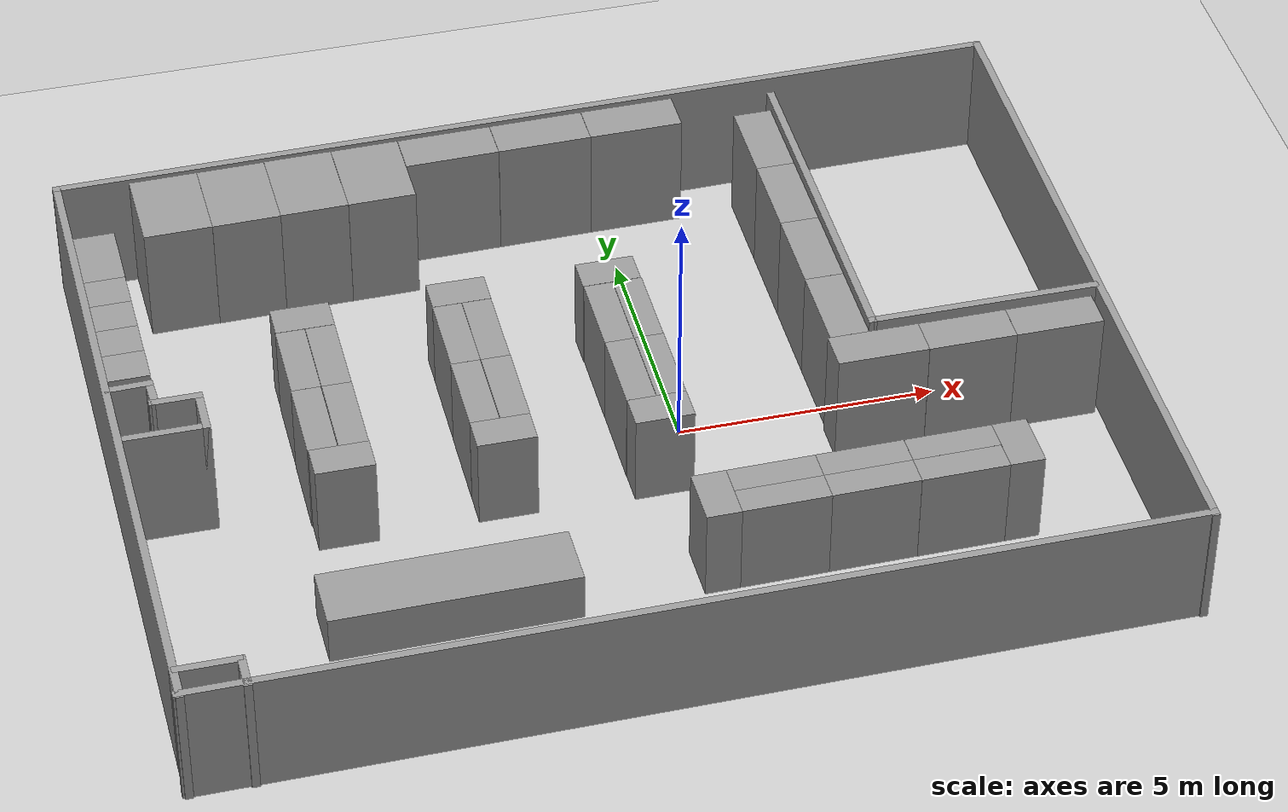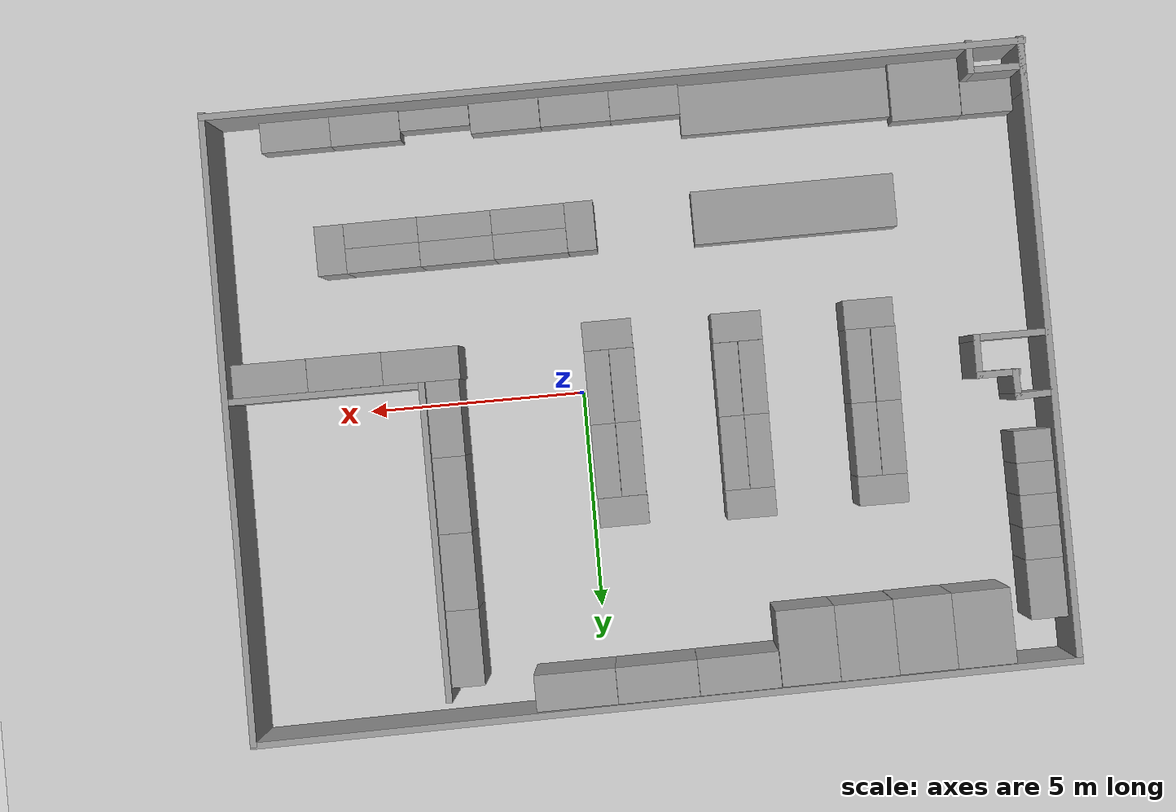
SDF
<sdf version="1.6">
 <world name="default">
  <light name="sun" type="directional">
   <pose>0 0 10 0 -0 0</pose>
   <diffuse>0.8 0.8 0.8 1</diffuse>
   <specular>0.2 0.2 0.2 1</specular>
   <attenuation>
    <range>1000</range>
    <constant>0.9</constant>
    <linear>0.01</linear>
    <quadratic>0.001</quadratic>
   </attenuation>
   <direction>-0.5 0.1 -0.9</direction>
  </light>
  <model name="ground_plane">
   <static>1</static>
   <link name="link">
    <collision name="collision">
     <geometry><plane><normal>0 0 1</normal><size>100 100</size></plane></geometry>
     <surface>
      <contact><collide_bitmask>65535</collide_bitmask></contact>
      <friction><ode><mu>100</mu><mu2>50</mu2></ode></friction>
     </surface>
    </collision>
    <visual name="visual">
     <cast_shadows>0</cast_shadows>
     <geometry><plane><normal>0 0 1</normal><size>100 100</size></plane></geometry>
     <material>
      <script><uri>file://media/materials/scripts/gazebo.material</uri><name>Gazebo/Grey</name></script>
     </material>
    </visual>
   </link>
  </model>
  <gravity>0 0 -9.8</gravity>
  <magnetic_field>6e-06 2.3e-05 -4.2e-05</magnetic_field>
  <atmosphere type="adiabatic"/>
  <physics name="default_physics" default="0" type="ode">
   <max_step_size>0.001</max_step_size>
   <real_time_factor>1</real_time_factor>
   <real_time_update_rate>1000</real_time_update_rate>
  </physics>
  <scene><ambient>0.4 0.4 0.4 1</ambient><background>0.7 0.7 0.7 1</background><shadows>1</shadows></scene>
  <audio><device>default</device></audio>
  <spherical_coordinates>
   <surface_model>EARTH_WGS84</surface_model>
   <latitude_deg>0</latitude_deg>
   <longitude_deg>0</longitude_deg>
   <elevation>0</elevation>
   <heading_deg>0</heading_deg>
  </spherical_coordinates>
  <model name="unit_box_2_clone">
   <pose>-5.2472 -6.35039 0.336143 -3e-06 -0 -3.13776</pose>
   <link name="link">
    <inertial>
     <mass>1</mass>
     <inertia>
      <ixx>0.166667</ixx>
      <ixy>0</ixy>
      <ixz>0</ixz>
      <iyy>0.166667</iyy>
      <iyz>0</iyz>
      <izz>0.166667</izz>
     </inertia>
    </inertial>
    <collision name="collision"><geometry><box><size>4.8667 1.16268 0.672289</size></box></geometry></collision>
    <visual name="visual">
     <geometry><box><size>4.8667 1.16268 0.672289</size></box></geometry>
     <material>
      <script><name>Gazebo/Grey</name><uri>file://media/materials/scripts/gazebo.material</uri></script>
     </material>
    </visual>
   </link>
  </model>
  <model name="environment3">
   <pose>-1.31274 0.09418 0 0 -0 0</pose>
   <link name="Wall_217">
    <collision name="Wall_217_Collision">
     <geometry><box><size>1.25 0.15 2.5</size></box></geometry>
     <pose>0 0 1.25 0 -0 0</pose>
    </collision>
    <visual name="Wall_217_Visual">
     <pose>0 0 1.25 0 -0 0</pose>
     <geometry><box><size>1.25 0.15 2.5</size></box></geometry>
     <material>
      <script><uri>file://media/materials/scripts/gazebo.material</uri><name>Gazebo/Grey</name></script>
      <ambient>1 1 1 1</ambient>
     </material>
     <meta><layer>0</layer></meta>
    </visual>
    <pose>-9.24536 -6.58909 0 0 -0 -1.5708</pose>
   </link>
   <link name="Wall_218">
    <collision name="Wall_218_Collision">
     <geometry><box><size>18.7151 0.15 2.5</size></box></geometry>
     <pose>0 0 1.25 0 -0 0</pose>
    </collision>
    <visual name="Wall_218_Visual">
     <pose>0 0 1.25 0 -0 0</pose>
     <geometry><box><size>18.7151 0.15 2.5</size></box></geometry>
     <material>
      <script><uri>file://media/materials/scripts/gazebo.material</uri><name>Gazebo/Grey</name></script>
      <ambient>1 1 1 1</ambient>
     </material>
     <meta><layer>0</layer></meta>
    </visual>
    <pose>0.001874 -7.08633 0 0 -0 0.005685</pose>
   </link>
   <link name="Wall_219">
    <collision name="Wall_219_Collision">
     <geometry><box><size>14.352 0.15 2.5</size></box></geometry>
     <pose>0 0 1.25 0 -0 0</pose>
    </collision>
    <visual name="Wall_219_Visual">
     <pose>0 0 1.25 0 -0 0</pose>
     <geometry><box><size>14.352 0.15 2.5</size></box></geometry>
     <material>
      <script><uri>file://media/materials/scripts/gazebo.material</uri><name>Gazebo/Grey</name></script>
      <ambient>1 1 1 1</ambient>
     </material>
     <meta><layer>0</layer></meta>
    </visual>
    <pose>9.31946 0.032158 0 0 -0 1.56584</pose>
   </link>
   <link name="Wall_220">
    <collision name="Wall_220_Collision">
     <geometry><box><size>18.8609 0.15 2.5</size></box></geometry>
     <pose>0 0 1.25 0 -0 0</pose>
    </collision>
    <visual name="Wall_220_Visual">
     <pose>0 0 1.25 0 -0 0</pose>
     <geometry><box><size>18.8609 0.15 2.5</size></box></geometry>
     <material>
      <script><uri>file://media/materials/scripts/gazebo.material</uri><name>Gazebo/Grey</name></script>
      <ambient>1 1 1 1</ambient>
     </material>
     <meta><layer>0</layer></meta>
    </visual>
    <pose>-0 7.02752 0 0 -0 -3.12655</pose>
   </link>
   <link name="Wall_223">
    <collision name="Wall_223_Collision">
     <geometry><box><size>14.206 0.15 2.5</size></box></geometry>
     <pose>0 0 1.25 0 -0 0</pose>
    </collision>
    <visual name="Wall_223_Visual">
     <pose>0 0 1.25 0 -0 0</pose>
     <geometry><box><size>14.206 0.15 2.5</size></box></geometry>
     <material>
      <script><uri>file://media/materials/scripts/gazebo.material</uri><name>Gazebo/Grey</name></script>
      <ambient>1 1 1 1</ambient>
     </material>
     <meta><layer>0</layer></meta>
    </visual>
    <pose>-9.29723 -0.140968 0 0 -0 -1.56263</pose>
   </link>
   <link name="Wall_225">
    <collision name="Wall_225_Collision">
     <geometry><box><size>0.90254 0.15 2.5</size></box></geometry>
     <pose>0 0 1.25 0 -0 0</pose>
    </collision>
    <visual name="Wall_225_Visual">
     <pose>0 0 1.25 0 -0 0</pose>
     <geometry><box><size>0.90254 0.15 2.5</size></box></geometry>
     <material>
      <script><uri>file://media/materials/scripts/gazebo.material</uri><name>Gazebo/Grey</name></script>
      <ambient>1 1 1 1</ambient>
     </material>
     <meta><layer>0</layer></meta>
    </visual>
    <pose>-8.87485 0.82636 0 0 -0 0.026731</pose>
   </link>
   <link name="Wall_226">
    <collision name="Wall_226_Collision">
     <geometry><box><size>0.678566 0.15 2.5</size></box></geometry>
     <pose>0 0 1.25 0 -0 0</pose>
    </collision>
    <visual name="Wall_226_Visual">
     <pose>0 0 1.25 0 -0 0</pose>
     <geometry><box><size>0.678566 0.15 2.5</size></box></geometry>
     <material>
      <script><uri>file://media/materials/scripts/gazebo.material</uri><name>Gazebo/Grey</name></script>
      <ambient>1 1 1 1</ambient>
     </material>
     <meta><layer>0</layer></meta>
    </visual>
    <pose>-8.48866 0.552211 0 0 -0 -1.53273</pose>
   </link>
   <link name="Wall_227">
    <collision name="Wall_227_Collision">
     <geometry><box><size>1 0.15 2.5</size></box></geometry>
     <pose>0 0 1.25 0 -0 0</pose>
    </collision>
    <visual name="Wall_227_Visual">
     <pose>0 0 1.25 0 -0 0</pose>
     <geometry><box><size>1 0.15 2.5</size></box></geometry>
     <material>
      <script><uri>file://media/materials/scripts/gazebo.material</uri><name>Gazebo/Grey</name></script>
      <ambient>1 1 1 1</ambient>
     </material>
     <meta><layer>0</layer></meta>
    </visual>
    <pose>-8.09383 0.28812 0 0 -0 0</pose>
   </link>
   <link name="Wall_228">
    <collision name="Wall_228_Collision">
     <geometry><box><size>1 0.15 2.5</size></box></geometry>
     <pose>0 0 1.25 0 -0 0</pose>
    </collision>
    <visual name="Wall_228_Visual">
     <pose>0 0 1.25 0 -0 0</pose>
     <geometry><box><size>1 0.15 2.5</size></box></geometry>
     <material>
      <script><uri>file://media/materials/scripts/gazebo.material</uri><name>Gazebo/Grey</name></script>
      <ambient>1 1 1 1</ambient>
     </material>
     <meta><layer>0</layer></meta>
    </visual>
    <pose>-7.66883 -0.13688 0 0 -0 -1.5708</pose>
   </link>
   <link name="Wall_229">
    <collision name="Wall_229_Collision">
     <geometry><box><size>1.75 0.15 2.5</size></box></geometry>
     <pose>0 0 1.25 0 -0 0</pose>
    </collision>
    <visual name="Wall_229_Visual">
     <pose>0 0 1.25 0 -0 0</pose>
     <geometry><box><size>1.75 0.15 2.5</size></box></geometry>
     <material>
      <script><uri>file://media/materials/scripts/gazebo.material</uri><name>Gazebo/Grey</name></script>
      <ambient>1 1 1 1</ambient>
     </material>
     <meta><layer>0</layer></meta>
    </visual>
    <pose>-8.46883 -0.56188 0 0 -0 3.14159</pose>
   </link>
   <link name="Wall_235">
    <collision name="Wall_235_Collision">
     <geometry><box><size>0.75 0.15 2.5</size></box></geometry>
     <pose>0 0 1.25 0 -0 0</pose>
    </collision>
    <visual name="Wall_235_Visual">
     <pose>0 0 1.25 0 -0 0</pose>
     <geometry><box><size>0.75 0.15 2.5</size></box></geometry>
     <material>
      <script><uri>file://media/materials/scripts/gazebo.material</uri><name>Gazebo/Grey</name></script>
      <ambient>1 1 1 1</ambient>
     </material>
     <meta><layer>0</layer></meta>
    </visual>
    <pose>-8.07048 -6.86922 0 0 -0 1.5708</pose>
   </link>
   <link name="Wall_236">
    <collision name="Wall_236_Collision">
     <geometry><box><size>1.25 0.15 2.5</size></box></geometry>
     <pose>0 0 1.25 0 -0 0</pose>
    </collision>
    <visual name="Wall_236_Visual">
     <pose>0 0 1.25 0 -0 0</pose>
     <geometry><box><size>1.25 0.15 2.5</size></box></geometry>
     <material>
      <script><uri>file://media/materials/scripts/gazebo.material</uri><name>Gazebo/Grey</name></script>
      <ambient>1 1 1 1</ambient>
     </material>
     <meta><layer>0</layer></meta>
    </visual>
    <pose>-8.66071 -6.56922 0 0 -0 3.14159</pose>
   </link>
   <link name="Wall_238">
    <collision name="Wall_238_Collision">
     <geometry><box><size>7.25 0.15 2.5</size></box></geometry>
     <pose>0 0 1.25 0 -0 0</pose>
    </collision>
    <visual name="Wall_238_Visual">
     <pose>0 0 1.25 0 -0 0</pose>
     <geometry><box><size>7.25 0.15 2.5</size></box></geometry>
     <material>
      <script><uri>file://media/materials/scripts/gazebo.material</uri><name>Gazebo/Grey</name></script>
      <ambient>1 1 1 1</ambient>
     </material>
     <meta><layer>0</layer></meta>
    </visual>
    <pose>4.87464 2.96657 0 0 -0 -1.5708</pose>
   </link>
   <link name="Wall_239">
    <collision name="Wall_239_Collision">
     <geometry><box><size>4.5 0.15 2.5</size></box></geometry>
     <pose>0 0 1.25 0 -0 0</pose>
    </collision>
    <visual name="Wall_239_Visual">
     <pose>0 0 1.25 0 -0 0</pose>
     <geometry><box><size>4.5 0.15 2.5</size></box></geometry>
     <material>
      <script><uri>file://media/materials/scripts/gazebo.material</uri><name>Gazebo/Grey</name></script>
      <ambient>1 1 1 1</ambient>
     </material>
     <meta><layer>0</layer></meta>
    </visual>
    <pose>7.04964 -0.58343 0 0 -0 0</pose>
   </link>
   <static>1</static>
  </model>
  <model name="unit_box_clone">
   <pose>-7.26491 6.08769 1.2101 0 -1e-06 1.58527</pose>
   <link name="link">
    <inertial>
     <mass>1</mass>
     <inertia>
      <ixx>0.166667</ixx>
      <ixy>0</ixy>
      <ixz>0</ixz>
      <iyy>0.166667</iyy>
      <iyz>0</iyz>
      <izz>0.166667</izz>
     </inertia>
    </inertial>
    <collision name="collision"><geometry><box><size>1.72242 1.3297 2.4202</size></box></geometry></collision>
    <visual name="visual">
     <geometry><box><size>1.72242 1.3297 2.4202</size></box></geometry>
     <material>
      <script><name>Gazebo/Grey</name><uri>file://media/materials/scripts/gazebo.material</uri></script>
     </material>
    </visual>
   </link>
  </model>
  <model name="unit_box_clone_0">
   <pose>-5.93518 6.11458 1.2101 0 -1e-06 1.58495</pose>
   <link name="link">
    <inertial>
     <mass>1</mass>
     <inertia>
      <ixx>0.166667</ixx>
      <ixy>0</ixy>
      <ixz>0</ixz>
      <iyy>0.166667</iyy>
      <iyz>0</iyz>
      <izz>0.166667</izz>
     </inertia>
    </inertial>
    <collision name="collision"><geometry><box><size>1.72242 1.3297 2.4202</size></box></geometry></collision>
    <visual name="visual">
     <geometry><box><size>1.72242 1.3297 2.4202</size></box></geometry>
     <material>
      <script><name>Gazebo/Grey</name><uri>file://media/materials/scripts/gazebo.material</uri></script>
     </material>
    </visual>
   </link>
  </model>
  <model name="unit_box_clone_1">
   <pose>-4.6045 6.12898 1.2101 0 -1e-06 1.58427</pose>
   <link name="link">
    <inertial>
     <mass>1</mass>
     <inertia>
      <ixx>0.166667</ixx>
      <ixy>0</ixy>
      <ixz>0</ixz>
      <iyy>0.166667</iyy>
      <iyz>0</iyz>
      <izz>0.166667</izz>
     </inertia>
    </inertial>
    <collision name="collision"><geometry><box><size>1.72242 1.3297 2.4202</size></box></geometry></collision>
    <visual name="visual">
     <geometry><box><size>1.72242 1.3297 2.4202</size></box></geometry>
     <material>
      <script><name>Gazebo/Grey</name><uri>file://media/materials/scripts/gazebo.material</uri></script>
     </material>
    </visual>
   </link>
  </model>
  <model name="unit_box_0_clone_0_clone">
   <pose>-1.15521 6.63331 1.20397 0 4e-06 0.013516</pose>
   <link name="link">
    <inertial>
     <mass>1</mass>
     <inertia>
      <ixx>0.166667</ixx>
      <ixy>0</ixy>
      <ixz>0</ixz>
      <iyy>0.166667</iyy>
      <iyz>0</iyz>
      <izz>0.166667</izz>
     </inertia>
    </inertial>
    <collision name="collision"><geometry><box><size>1.85287 0.828529 2.40795</size></box></geometry></collision>
    <visual name="visual">
     <geometry><box><size>1.85287 0.828529 2.40795</size></box></geometry>
     <material>
      <script><name>Gazebo/Grey</name><uri>file://media/materials/scripts/gazebo.material</uri></script>
     </material>
    </visual>
   </link>
  </model>
  <model name="unit_box_0_clone_0_clone_0">
   <pose>0.700059 6.65273 1.20397 0 4e-06 0.007467</pose>
   <link name="link">
    <inertial>
     <mass>1</mass>
     <inertia>
      <ixx>0.166667</ixx>
      <ixy>0</ixy>
      <ixz>0</ixz>
      <iyy>0.166667</iyy>
      <iyz>0</iyz>
      <izz>0.166667</izz>
     </inertia>
    </inertial>
    <collision name="collision"><geometry><box><size>1.85287 0.828529 2.40795</size></box></geometry></collision>
    <visual name="visual">
     <geometry><box><size>1.85287 0.828529 2.40795</size></box></geometry>
     <material>
      <script><name>Gazebo/Grey</name><uri>file://media/materials/scripts/gazebo.material</uri></script>
     </material>
    </visual>
   </link>
  </model>
  <model name="unit_box_1_clone_clone_clone_clone_0_clone">
   <pose>3.10878 0.300895 1.14541 -5e-06 -0 -0.000475</pose>
   <link name="link">
    <inertial>
     <mass>1</mass>
     <inertia>
      <ixx>0.166667</ixx>
      <ixy>0</ixy>
      <ixz>0</ixz>
      <iyy>0.166667</iyy>
      <iyz>0</iyz>
      <izz>0.166667</izz>
     </inertia>
    </inertial>
    <collision name="collision"><geometry><box><size>0.754186 1.73654 2.29083</size></box></geometry></collision>
    <visual name="visual">
     <geometry><box><size>0.754186 1.73654 2.29083</size></box></geometry>
     <material>
      <script><name>Gazebo/Grey</name><uri>file://media/materials/scripts/gazebo.material</uri></script>
     </material>
    </visual>
   </link>
  </model>
  <model name="unit_box_1_clone_clone_clone_clone_0_clone_clone">
   <pose>3.10933 2.03759 1.14541 5e-06 -0 -0.000132</pose>
   <link name="link">
    <inertial>
     <mass>1</mass>
     <inertia>
      <ixx>0.166667</ixx>
      <ixy>0</ixy>
      <ixz>0</ixz>
      <iyy>0.166667</iyy>
      <iyz>0</iyz>
      <izz>0.166667</izz>
     </inertia>
    </inertial>
    <collision name="collision"><geometry><box><size>0.754186 1.73654 2.29083</size></box></geometry></collision>
    <visual name="visual">
     <geometry><box><size>0.754186 1.73654 2.29083</size></box></geometry>
     <material>
      <script><name>Gazebo/Grey</name><uri>file://media/materials/scripts/gazebo.material</uri></script>
     </material>
    </visual>
   </link>
  </model>
  <model name="unit_box_1_clone_clone_clone_clone_0_clone_clone_0">
   <pose>3.10954 3.77433 1.14541 5e-06 -0 0.00029</pose>
   <link name="link">
    <inertial>
     <mass>1</mass>
     <inertia>
      <ixx>0.166667</ixx>
      <ixy>0</ixy>
      <ixz>0</ixz>
      <iyy>0.166667</iyy>
      <iyz>0</iyz>
      <izz>0.166667</izz>
     </inertia>
    </inertial>
    <collision name="collision"><geometry><box><size>0.754186 1.73654 2.29083</size></box></geometry></collision>
    <visual name="visual">
     <geometry><box><size>0.754186 1.73654 2.29083</size></box></geometry>
     <material>
      <script><name>Gazebo/Grey</name><uri>file://media/materials/scripts/gazebo.material</uri></script>
     </material>
    </visual>
   </link>
  </model>
  <model name="unit_box_1_clone_clone_clone_clone_0_clone_clone_1">
   <pose>3.10954 5.51109 1.14541 -5e-06 -0 0.000134</pose>
   <link name="link">
    <inertial>
     <mass>1</mass>
     <inertia>
      <ixx>0.166667</ixx>
      <ixy>0</ixy>
      <ixz>0</ixz>
      <iyy>0.166667</iyy>
      <iyz>0</iyz>
      <izz>0.166667</izz>
     </inertia>
    </inertial>
    <collision name="collision"><geometry><box><size>0.754186 1.73654 2.29083</size></box></geometry></collision>
    <visual name="visual">
     <geometry><box><size>0.754186 1.73654 2.29083</size></box></geometry>
     <material>
      <script><name>Gazebo/Grey</name><uri>file://media/materials/scripts/gazebo.material</uri></script>
     </material>
    </visual>
   </link>
  </model>
  <model name="unit_box_4_clone">
   <pose>-10.1491 5.33947 0.993337 5e-06 0 0.007952</pose>
   <link name="link">
    <inertial>
     <mass>1</mass>
     <inertia>
      <ixx>0.166667</ixx>
      <ixy>0</ixy>
      <ixz>0</ixz>
      <iyy>0.166667</iyy>
      <iyz>0</iyz>
      <izz>0.166667</izz>
     </inertia>
    </inertial>
    <collision name="collision"><geometry><box><size>0.849724 1.3605 1.98668</size></box></geometry></collision>
    <visual name="visual">
     <geometry><box><size>0.849724 1.3605 1.98668</size></box></geometry>
     <material>
      <script><name>Gazebo/Grey</name><uri>file://media/materials/scripts/gazebo.material</uri></script>
     </material>
    </visual>
   </link>
  </model>
  <model name="unit_box_4_clone_clone">
   <pose>-10.1455 4.29171 0.993339 -1e-06 -2e-06 0.00795</pose>
   <link name="link">
    <inertial>
     <mass>1</mass>
     <inertia>
      <ixx>0.166667</ixx>
      <ixy>0</ixy>
      <ixz>0</ixz>
      <iyy>0.166667</iyy>
      <iyz>0</iyz>
      <izz>0.166667</izz>
     </inertia>
    </inertial>
    <collision name="collision"><geometry><box><size>0.849724 0.735026 1.98668</size></box></geometry></collision>
    <visual name="visual">
     <geometry><box><size>0.849724 0.735026 1.98668</size></box></geometry>
     <material>
      <script><name>Gazebo/Grey</name><uri>file://media/materials/scripts/gazebo.material</uri></script>
     </material>
    </visual>
   </link>
  </model>
  <model name="unit_box_4_clone_clone_0">
   <pose>-10.1391 3.55671 0.993335 -0 -4e-06 0.007949</pose>
   <link name="link">
    <inertial>
     <mass>1</mass>
     <inertia>
      <ixx>0.166667</ixx>
      <ixy>0</ixy>
      <ixz>0</ixz>
      <iyy>0.166667</iyy>
      <iyz>0</iyz>
      <izz>0.166667</izz>
     </inertia>
    </inertial>
    <collision name="collision"><geometry><box><size>0.849724 0.735026 1.98668</size></box></geometry></collision>
    <visual name="visual">
     <geometry><box><size>0.849724 0.735026 1.98668</size></box></geometry>
     <material>
      <script><name>Gazebo/Grey</name><uri>file://media/materials/scripts/gazebo.material</uri></script>
     </material>
    </visual>
   </link>
  </model>
  <model name="unit_box_4_clone_clone_1">
   <pose>-10.1329 2.82171 0.99334 0 -0 0.007945</pose>
   <link name="link">
    <inertial>
     <mass>1</mass>
     <inertia>
      <ixx>0.166667</ixx>
      <ixy>0</ixy>
      <ixz>0</ixz>
      <iyy>0.166667</iyy>
      <iyz>0</iyz>
      <izz>0.166667</izz>
     </inertia>
    </inertial>
    <collision name="collision"><geometry><box><size>0.849724 0.735026 1.98668</size></box></geometry></collision>
    <visual name="visual">
     <geometry><box><size>0.849724 0.735026 1.98668</size></box></geometry>
     <material>
      <script><name>Gazebo/Grey</name><uri>file://media/materials/scripts/gazebo.material</uri></script>
     </material>
    </visual>
   </link>
  </model>
  <model name="unit_box_4_clone_clone_2">
   <pose>-10.1233 2.08674 0.993338 -2e-06 2e-06 0.007944</pose>
   <link name="link">
    <inertial>
     <mass>1</mass>
     <inertia>
      <ixx>0.166667</ixx>
      <ixy>0</ixy>
      <ixz>0</ixz>
      <iyy>0.166667</iyy>
      <iyz>0</iyz>
      <izz>0.166667</izz>
     </inertia>
    </inertial>
    <collision name="collision"><geometry><box><size>0.849724 0.735026 1.98668</size></box></geometry></collision>
    <visual name="visual">
     <geometry><box><size>0.849724 0.735026 1.98668</size></box></geometry>
     <material>
      <script><name>Gazebo/Grey</name><uri>file://media/materials/scripts/gazebo.material</uri></script>
     </material>
    </visual>
   </link>
  </model>
  <model name="unit_box_2_clone_clone">
   <pose>-5.24083 -3.81499 0.5 -2e-06 -0 -3.13586</pose>
   <link name="link">
    <inertial>
     <mass>1</mass>
     <inertia>
      <ixx>0.166667</ixx>
      <ixy>0</ixy>
      <ixz>0</ixz>
      <iyy>0.166667</iyy>
      <iyz>0</iyz>
      <izz>0.166667</izz>
     </inertia>
    </inertial>
    <collision name="collision"><geometry><box><size>4.69338 1.22969 1</size></box></geometry></collision>
    <visual name="visual">
     <geometry><box><size>4.69338 1.22969 1</size></box></geometry>
     <material>
      <script><name>Gazebo/Grey</name><uri>file://media/materials/scripts/gazebo.material</uri></script>
     </material>
    </visual>
   </link>
  </model>
  <model name="unit_box_0_clone_0_clone_clone">
   <pose>-3.01091 6.6068 1.20397 0 -0 0.015006</pose>
   <link name="link">
    <inertial>
     <mass>1</mass>
     <inertia>
      <ixx>0.166667</ixx>
      <ixy>0</ixy>
      <ixz>0</ixz>
      <iyy>0.166667</iyy>
      <iyz>0</iyz>
      <izz>0.166667</izz>
     </inertia>
    </inertial>
    <collision name="collision"><geometry><box><size>1.85287 0.828529 2.40794</size></box></geometry></collision>
    <visual name="visual">
     <geometry><box><size>1.85287 0.828529 2.40794</size></box></geometry>
     <material>
      <script><name>Gazebo/Grey</name><uri>file://media/materials/scripts/gazebo.material</uri></script>
     </material>
    </visual>
   </link>
  </model>
  <model name="unit_box_clone_clone">
   <pose>-8.59455 6.07318 1.2101 0 -1e-06 1.58527</pose>
   <link name="link">
    <inertial>
     <mass>1</mass>
     <inertia>
      <ixx>0.166667</ixx>
      <ixy>0</ixy>
      <ixz>0</ixz>
      <iyy>0.166667</iyy>
      <iyz>0</iyz>
      <izz>0.166667</izz>
     </inertia>
    </inertial>
    <collision name="collision"><geometry><box><size>1.72242 1.3297 2.4202</size></box></geometry></collision>
    <visual name="visual">
     <geometry><box><size>1.72242 1.3297 2.4202</size></box></geometry>
     <material>
      <script><name>Gazebo/Grey</name><uri>file://media/materials/scripts/gazebo.material</uri></script>
     </material>
    </visual>
   </link>
  </model>
  <model name="unit_box_1_clone_clone_clone_clone_0_clone_1_clone_0">
   <pose>3.56276 -0.944844 1.14541 5e-06 0 1.57079</pose>
   <link name="link">
    <inertial>
     <mass>1</mass>
     <inertia>
      <ixx>0.166667</ixx>
      <ixy>0</ixy>
      <ixz>0</ixz>
      <iyy>0.166667</iyy>
      <iyz>0</iyz>
      <izz>0.166667</izz>
     </inertia>
    </inertial>
    <collision name="collision"><geometry><box><size>0.754186 1.75489 2.29083</size></box></geometry></collision>
    <visual name="visual">
     <geometry><box><size>0.754186 1.75489 2.29083</size></box></geometry>
     <material>
      <script><name>Gazebo/Grey</name><uri>file://media/materials/scripts/gazebo.material</uri></script>
     </material>
    </visual>
   </link>
  </model>
  <model name="unit_box_1_clone_clone_clone_clone_0_clone_1_clone_0_clone">
   <pose>5.2917 -0.946505 1.14541 5e-06 -0 1.57188</pose>
   <link name="link">
    <inertial>
     <mass>1</mass>
     <inertia>
      <ixx>0.166667</ixx>
      <ixy>0</ixy>
      <ixz>0</ixz>
      <iyy>0.166667</iyy>
      <iyz>0</iyz>
      <izz>0.166667</izz>
     </inertia>
    </inertial>
    <collision name="collision"><geometry><box><size>0.754186 1.70144 2.29083</size></box></geometry></collision>
    <visual name="visual">
     <geometry><box><size>0.754186 1.70144 2.29083</size></box></geometry>
     <material>
      <script><name>Gazebo/Grey</name><uri>file://media/materials/scripts/gazebo.material</uri></script>
     </material>
    </visual>
   </link>
  </model>
  <model name="unit_box_1_clone_clone_clone_clone_0_clone_1_clone_0_clone_0">
   <pose>6.99357 -0.944251 1.14541 5e-06 -0 1.57302</pose>
   <link name="link">
    <inertial>
     <mass>1</mass>
     <inertia>
      <ixx>0.166667</ixx>
      <ixy>0</ixy>
      <ixz>0</ixz>
      <iyy>0.166667</iyy>
      <iyz>0</iyz>
      <izz>0.166667</izz>
     </inertia>
    </inertial>
    <collision name="collision"><geometry><box><size>0.754186 1.70144 2.29083</size></box></geometry></collision>
    <visual name="visual">
     <geometry><box><size>0.754186 1.70144 2.29083</size></box></geometry>
     <material>
      <script><name>Gazebo/Grey</name><uri>file://media/materials/scripts/gazebo.material</uri></script>
     </material>
    </visual>
   </link>
  </model>
  <model name="unit_box_3_clone_2_clone">
   <pose>-0.385061 -6.5644 0.499997 0 -0 0.005815</pose>
   <link name="link">
    <inertial>
     <mass>1</mass>
     <inertia>
      <ixx>0.166667</ixx>
      <ixy>0</ixy>
      <ixz>0</ixz>
      <iyy>0.166667</iyy>
      <iyz>0</iyz>
      <izz>0.166667</izz>
     </inertia>
    </inertial>
    <collision name="collision"><geometry><box><size>1.61574 0.694739 0.999995</size></box></geometry></collision>
    <visual name="visual">
     <geometry><box><size>1.61574 0.694739 0.999995</size></box></geometry>
     <material>
      <script><name>Gazebo/Grey</name><uri>file://media/materials/scripts/gazebo.material</uri></script>
     </material>
    </visual>
   </link>
  </model>
  <model name="unit_box_3_clone_2_clone_0">
   <pose>1.23771 -6.55451 0.499998 0 -0 0.00663</pose>
   <link name="link">
    <inertial>
     <mass>1</mass>
     <inertia>
      <ixx>0.166667</ixx>
      <ixy>0</ixy>
      <ixz>0</ixz>
      <iyy>0.166667</iyy>
      <iyz>0</iyz>
      <izz>0.166667</izz>
     </inertia>
    </inertial>
    <collision name="collision"><geometry><box><size>1.61574 0.694739 0.999995</size></box></geometry></collision>
    <visual name="visual">
     <geometry><box><size>1.61574 0.694739 0.999995</size></box></geometry>
     <material>
      <script><name>Gazebo/Grey</name><uri>file://media/materials/scripts/gazebo.material</uri></script>
     </material>
    </visual>
   </link>
  </model>
  <model name="unit_box_3_clone_2_clone_2">
   <pose>2.86269 -6.63548 0.499998 0 -0 0.004952</pose>
   <link name="link">
    <inertial>
     <mass>1</mass>
     <inertia>
      <ixx>0.166667</ixx>
      <ixy>0</ixy>
      <ixz>0</ixz>
      <iyy>0.166667</iyy>
      <iyz>0</iyz>
      <izz>0.166667</izz>
     </inertia>
    </inertial>
    <collision name="collision"><geometry><box><size>1.61574 0.470837 0.999995</size></box></geometry></collision>
    <visual name="visual">
     <geometry><box><size>1.61574 0.470837 0.999995</size></box></geometry>
     <material>
      <script><name>Gazebo/Grey</name><uri>file://media/materials/scripts/gazebo.material</uri></script>
     </material>
    </visual>
   </link>
  </model>
  <model name="unit_box_3_clone_2_clone_0_clone">
   <pose>4.48025 -6.53526 0.499998 0 -0 0.005731</pose>
   <link name="link">
    <inertial>
     <mass>1</mass>
     <inertia>
      <ixx>0.166667</ixx>
      <ixy>0</ixy>
      <ixz>0</ixz>
      <iyy>0.166667</iyy>
      <iyz>0</iyz>
      <izz>0.166667</izz>
     </inertia>
    </inertial>
    <collision name="collision"><geometry><box><size>1.61574 0.694739 0.999995</size></box></geometry></collision>
    <visual name="visual">
     <geometry><box><size>1.61574 0.694739 0.999995</size></box></geometry>
     <material>
      <script><name>Gazebo/Grey</name><uri>file://media/materials/scripts/gazebo.material</uri></script>
     </material>
    </visual>
   </link>
  </model>
  <model name="unit_box_3_clone_2_clone_0_clone_0">
   <pose>6.09602 -6.52743 0.499998 0 -0 0.005747</pose>
   <link name="link">
    <inertial>
     <mass>1</mass>
     <inertia>
      <ixx>0.166667</ixx>
      <ixy>0</ixy>
      <ixz>0</ixz>
      <iyy>0.166667</iyy>
      <iyz>0</iyz>
      <izz>0.166667</izz>
     </inertia>
    </inertial>
    <collision name="collision"><geometry><box><size>1.61574 0.694739 0.999995</size></box></geometry></collision>
    <visual name="visual">
     <geometry><box><size>1.61574 0.694739 0.999995</size></box></geometry>
     <material>
      <script><name>Gazebo/Grey</name><uri>file://media/materials/scripts/gazebo.material</uri></script>
     </material>
    </visual>
   </link>
  </model>
  <model name="unit_box_3_clone_1_clone_clone_clone_clone_2_clone_1_clone">
   <pose>-0.414585 -0.101058 0.94729 0 -0 -1.5694</pose>
   <link name="link">
    <inertial>
     <mass>1</mass>
     <inertia>
      <ixx>0.166667</ixx>
      <ixy>0</ixy>
      <ixz>0</ixz>
      <iyy>0.166667</iyy>
      <iyz>0</iyz>
      <izz>0.166667</izz>
     </inertia>
    </inertial>
    <collision name="collision"><geometry><box><size>1.6816 0.564855 1.89458</size></box></geometry></collision>
    <visual name="visual">
     <geometry><box><size>1.6816 0.564855 1.89458</size></box></geometry>
     <material>
      <script><name>Gazebo/Grey</name><uri>file://media/materials/scripts/gazebo.material</uri></script>
     </material>
    </visual>
   </link>
  </model>
  <model name="unit_box_3_clone_1_clone_clone_clone_clone_2_clone_1_clone_0">
   <pose>-0.991606 1.57621 0.94729 -0 -0 -1.56926</pose>
   <link name="link">
    <inertial>
     <mass>1</mass>
     <inertia>
      <ixx>0.166667</ixx>
      <ixy>0</ixy>
      <ixz>0</ixz>
      <iyy>0.166667</iyy>
      <iyz>0</iyz>
      <izz>0.166667</izz>
     </inertia>
    </inertial>
    <collision name="collision"><geometry><box><size>1.6816 0.564855 1.89458</size></box></geometry></collision>
    <visual name="visual">
     <geometry><box><size>1.6816 0.564855 1.89458</size></box></geometry>
     <material>
      <script><name>Gazebo/Grey</name><uri>file://media/materials/scripts/gazebo.material</uri></script>
     </material>
    </visual>
   </link>
  </model>
  <model name="unit_box_3_clone_1_clone_clone_clone_clone_2_clone_1_clone_1">
   <pose>-0.422281 1.58082 0.94728 -0 -0 -1.56839</pose>
   <link name="link">
    <inertial>
     <mass>1</mass>
     <inertia>
      <ixx>0.166667</ixx>
      <ixy>0</ixy>
      <ixz>0</ixz>
      <iyy>0.166667</iyy>
      <iyz>0</iyz>
      <izz>0.166667</izz>
     </inertia>
    </inertial>
    <collision name="collision"><geometry><box><size>1.6816 0.564855 1.89458</size></box></geometry></collision>
    <visual name="visual">
     <geometry><box><size>1.6816 0.564855 1.89458</size></box></geometry>
     <material>
      <script><name>Gazebo/Grey</name><uri>file://media/materials/scripts/gazebo.material</uri></script>
     </material>
    </visual>
   </link>
  </model>
  <model name="unit_box_0_clone_1_clone_0_clone_1_clone">
   <pose>-0.723624 2.75267 0.94842 1e-06 -0 -1.56486</pose>
   <link name="link">
    <inertial>
     <mass>1</mass>
     <inertia>
      <ixx>0.166667</ixx>
      <ixy>0</ixy>
      <ixz>0</ixz>
      <iyy>0.166667</iyy>
      <iyz>0</iyz>
      <izz>0.166667</izz>
     </inertia>
    </inertial>
    <collision name="collision"><geometry><box><size>0.663584 1.13156 1.89684</size></box></geometry></collision>
    <visual name="visual">
     <geometry><box><size>0.663584 1.13156 1.89684</size></box></geometry>
     <material>
      <script><name>Gazebo/Grey</name><uri>file://media/materials/scripts/gazebo.material</uri></script>
     </material>
    </visual>
   </link>
  </model>
  <model name="unit_box_0_clone_1_clone_0_clone_1_clone_0">
   <pose>-0.30189 -3.79137 0.948417 -4e-06 1e-06 -3.1339</pose>
   <link name="link">
    <inertial>
     <mass>1</mass>
     <inertia>
      <ixx>0.166667</ixx>
      <ixy>0</ixy>
      <ixz>0</ixz>
      <iyy>0.166667</iyy>
      <iyz>0</iyz>
      <izz>0.166667</izz>
     </inertia>
    </inertial>
    <collision name="collision"><geometry><box><size>0.663584 1.13156 1.89684</size></box></geometry></collision>
    <visual name="visual">
     <geometry><box><size>0.663584 1.13156 1.89684</size></box></geometry>
     <material>
      <script><name>Gazebo/Grey</name><uri>file://media/materials/scripts/gazebo.material</uri></script>
     </material>
    </visual>
   </link>
  </model>
  <model name="unit_box_3_clone_1_clone_clone_clone_clone_2_clone_1_clone_clone">
   <pose>0.869828 -3.4956 0.947291 3e-06 -0 -3.13361</pose>
   <link name="link">
    <inertial>
     <mass>1</mass>
     <inertia>
      <ixx>0.166667</ixx>
      <ixy>0</ixy>
      <ixz>0</ixz>
      <iyy>0.166667</iyy>
      <iyz>0</iyz>
      <izz>0.166667</izz>
     </inertia>
    </inertial>
    <collision name="collision"><geometry><box><size>1.6816 0.564855 1.89458</size></box></geometry></collision>
    <visual name="visual">
     <geometry><box><size>1.6816 0.564855 1.89458</size></box></geometry>
     <material>
      <script><name>Gazebo/Grey</name><uri>file://media/materials/scripts/gazebo.material</uri></script>
     </material>
    </visual>
   </link>
  </model>
  <model name="unit_box_3_clone_1_clone_clone_clone_clone_2_clone_1_clone_clone_clone">
   <pose>0.873408 -4.06045 0.947286 0 5e-06 -3.13361</pose>
   <link name="link">
    <inertial>
     <mass>1</mass>
     <inertia>
      <ixx>0.166667</ixx>
      <ixy>0</ixy>
      <ixz>0</ixz>
      <iyy>0.166667</iyy>
      <iyz>0</iyz>
      <izz>0.166667</izz>
     </inertia>
    </inertial>
    <collision name="collision"><geometry><box><size>1.6816 0.564855 1.89458</size></box></geometry></collision>
    <visual name="visual">
     <geometry><box><size>1.6816 0.564855 1.89458</size></box></geometry>
     <material>
      <script><name>Gazebo/Grey</name><uri>file://media/materials/scripts/gazebo.material</uri></script>
     </material>
    </visual>
   </link>
  </model>
  <model name="unit_box_3_clone_1_clone_clone_clone_clone_2_clone_1_clone_clone_clone_clone">
   <pose>2.55593 -4.04456 0.947286 -0 -5e-06 -3.13339</pose>
   <link name="link">
    <inertial>
     <mass>1</mass>
     <inertia>
      <ixx>0.166667</ixx>
      <ixy>0</ixy>
      <ixz>0</ixz>
      <iyy>0.166667</iyy>
      <iyz>0</iyz>
      <izz>0.166667</izz>
     </inertia>
    </inertial>
    <collision name="collision"><geometry><box><size>1.6816 0.564855 1.89458</size></box></geometry></collision>
    <visual name="visual">
     <geometry><box><size>1.6816 0.564855 1.89458</size></box></geometry>
     <material>
      <script><name>Gazebo/Grey</name><uri>file://media/materials/scripts/gazebo.material</uri></script>
     </material>
    </visual>
   </link>
  </model>
  <model name="unit_box_3_clone_1_clone_clone_clone_clone_2_clone_1_clone_clone_clone_clone_0">
   <pose>2.55146 -3.47972 0.947276 -0 -7e-06 -3.13339</pose>
   <link name="link">
    <inertial>
     <mass>1</mass>
     <inertia>
      <ixx>0.166667</ixx>
      <ixy>0</ixy>
      <ixz>0</ixz>
      <iyy>0.166667</iyy>
      <iyz>0</iyz>
      <izz>0.166667</izz>
     </inertia>
    </inertial>
    <collision name="collision"><geometry><box><size>1.6816 0.564855 1.89458</size></box></geometry></collision>
    <visual name="visual">
     <geometry><box><size>1.6816 0.564855 1.89458</size></box></geometry>
     <material>
      <script><name>Gazebo/Grey</name><uri>file://media/materials/scripts/gazebo.material</uri></script>
     </material>
    </visual>
   </link>
  </model>
  <model name="unit_box_3_clone_1_clone_clone_clone_clone_2_clone_1_clone_clone_clone_clone_1">
   <pose>4.23836 -4.03489 0.94729 -0 -0 -3.13427</pose>
   <link name="link">
    <inertial>
     <mass>1</mass>
     <inertia>
      <ixx>0.166667</ixx>
      <ixy>0</ixy>
      <ixz>0</ixz>
      <iyy>0.166667</iyy>
      <iyz>0</iyz>
      <izz>0.166667</izz>
     </inertia>
    </inertial>
    <collision name="collision"><geometry><box><size>1.6816 0.564855 1.89458</size></box></geometry></collision>
    <visual name="visual">
     <geometry><box><size>1.6816 0.564855 1.89458</size></box></geometry>
     <material>
      <script><name>Gazebo/Grey</name><uri>file://media/materials/scripts/gazebo.material</uri></script>
     </material>
    </visual>
   </link>
  </model>
  <model name="unit_box_3_clone_1_clone_clone_clone_clone_2_clone_1_clone_clone_clone_clone_2">
   <pose>4.23403 -3.4697 0.94729 0 1e-06 -3.1344</pose>
   <link name="link">
    <inertial>
     <mass>1</mass>
     <inertia>
      <ixx>0.166667</ixx>
      <ixy>0</ixy>
      <ixz>0</ixz>
      <iyy>0.166667</iyy>
      <iyz>0</iyz>
      <izz>0.166667</izz>
     </inertia>
    </inertial>
    <collision name="collision"><geometry><box><size>1.6816 0.564855 1.89458</size></box></geometry></collision>
    <visual name="visual">
     <geometry><box><size>1.6816 0.564855 1.89458</size></box></geometry>
     <material>
      <script><name>Gazebo/Grey</name><uri>file://media/materials/scripts/gazebo.material</uri></script>
     </material>
    </visual>
   </link>
  </model>
  <model name="unit_box_0_clone_1_clone_0_clone_1_clone_0_clone">
   <pose>5.40885 -3.7436 0.948418 -3e-06 -1e-06 -3.134</pose>
   <link name="link">
    <inertial>
     <mass>1</mass>
     <inertia>
      <ixx>0.166667</ixx>
      <ixy>0</ixy>
      <ixz>0</ixz>
      <iyy>0.166667</iyy>
      <iyz>0</iyz>
      <izz>0.166667</izz>
     </inertia>
    </inertial>
    <collision name="collision"><geometry><box><size>0.663584 1.13156 1.89684</size></box></geometry></collision>
    <visual name="visual">
     <geometry><box><size>0.663584 1.13156 1.89684</size></box></geometry>
     <material>
      <script><name>Gazebo/Grey</name><uri>file://media/materials/scripts/gazebo.material</uri></script>
     </material>
    </visual>
   </link>
  </model>
  <model name="unit_box_0_clone_1_clone_0_clone_1_clone_1">
   <pose>-3.64434 -1.20171 0.948417 -4e-06 -1e-06 -1.57432</pose>
   <link name="link">
    <inertial>
     <mass>1</mass>
     <inertia>
      <ixx>0.166667</ixx>
      <ixy>0</ixy>
      <ixz>0</ixz>
      <iyy>0.166667</iyy>
      <iyz>0</iyz>
      <izz>0.166667</izz>
     </inertia>
    </inertial>
    <collision name="collision"><geometry><box><size>0.663584 1.13156 1.89684</size></box></geometry></collision>
    <visual name="visual">
     <geometry><box><size>0.663584 1.13156 1.89684</size></box></geometry>
     <material>
      <script><name>Gazebo/Grey</name><uri>file://media/materials/scripts/gazebo.material</uri></script>
     </material>
    </visual>
   </link>
  </model>
  <model name="unit_box_3_clone_1_clone_clone_clone_clone_2_clone_1_clone_2">
   <pose>-3.92575 -0.026043 0.94729 0 0 -1.5729</pose>
   <link name="link">
    <inertial>
     <mass>1</mass>
     <inertia>
      <ixx>0.166667</ixx>
      <ixy>0</ixy>
      <ixz>0</ixz>
      <iyy>0.166667</iyy>
      <iyz>0</iyz>
      <izz>0.166667</izz>
     </inertia>
    </inertial>
    <collision name="collision"><geometry><box><size>1.6816 0.564855 1.89458</size></box></geometry></collision>
    <visual name="visual">
     <geometry><box><size>1.6816 0.564855 1.89458</size></box></geometry>
     <material>
      <script><name>Gazebo/Grey</name><uri>file://media/materials/scripts/gazebo.material</uri></script>
     </material>
    </visual>
   </link>
  </model>
  <model name="unit_box_3_clone_1_clone_clone_clone_clone_2_clone_1_clone_3">
   <pose>-3.35291 -0.027663 0.94729 0 -0 -1.57375</pose>
   <link name="link">
    <inertial>
     <mass>1</mass>
     <inertia>
      <ixx>0.166667</ixx>
      <ixy>0</ixy>
      <ixz>0</ixz>
      <iyy>0.166667</iyy>
      <iyz>0</iyz>
      <izz>0.166667</izz>
     </inertia>
    </inertial>
    <collision name="collision"><geometry><box><size>1.6816 0.564855 1.89458</size></box></geometry></collision>
    <visual name="visual">
     <geometry><box><size>1.6816 0.564855 1.89458</size></box></geometry>
     <material>
      <script><name>Gazebo/Grey</name><uri>file://media/materials/scripts/gazebo.material</uri></script>
     </material>
    </visual>
   </link>
  </model>
  <model name="unit_box_3_clone_1_clone_clone_clone_clone_2_clone_1_clone_4">
   <pose>-3.91899 1.65576 0.94729 0 0 -1.57285</pose>
   <link name="link">
    <inertial>
     <mass>1</mass>
     <inertia>
      <ixx>0.166667</ixx>
      <ixy>0</ixy>
      <ixz>0</ixz>
      <iyy>0.166667</iyy>
      <iyz>0</iyz>
      <izz>0.166667</izz>
     </inertia>
    </inertial>
    <collision name="collision"><geometry><box><size>1.6816 0.564855 1.89458</size></box></geometry></collision>
    <visual name="visual">
     <geometry><box><size>1.6816 0.564855 1.89458</size></box></geometry>
     <material>
      <script><name>Gazebo/Grey</name><uri>file://media/materials/scripts/gazebo.material</uri></script>
     </material>
    </visual>
   </link>
  </model>
  <model name="unit_box_3_clone_1_clone_clone_clone_clone_2_clone_1_clone_5">
   <pose>-3.35189 1.65459 0.94729 -1e-06 -0 -1.57286</pose>
   <link name="link">
    <inertial>
     <mass>1</mass>
     <inertia>
      <ixx>0.166667</ixx>
      <ixy>0</ixy>
      <ixz>0</ixz>
      <iyy>0.166667</iyy>
      <iyz>0</iyz>
      <izz>0.166667</izz>
     </inertia>
    </inertial>
    <collision name="collision"><geometry><box><size>1.6816 0.564855 1.89458</size></box></geometry></collision>
    <visual name="visual">
     <geometry><box><size>1.6816 0.564855 1.89458</size></box></geometry>
     <material>
      <script><name>Gazebo/Grey</name><uri>file://media/materials/scripts/gazebo.material</uri></script>
     </material>
    </visual>
   </link>
  </model>
  <model name="unit_box_0_clone_1_clone_0_clone_1_clone_1_clone">
   <pose>-3.62984 2.82776 0.94842 0 0 -1.57285</pose>
   <link name="link">
    <inertial>
     <mass>1</mass>
     <inertia>
      <ixx>0.166667</ixx>
      <ixy>0</ixy>
      <ixz>0</ixz>
      <iyy>0.166667</iyy>
      <iyz>0</iyz>
      <izz>0.166667</izz>
     </inertia>
    </inertial>
    <collision name="collision"><geometry><box><size>0.663584 1.13156 1.89684</size></box></geometry></collision>
    <visual name="visual">
     <geometry><box><size>0.663584 1.13156 1.89684</size></box></geometry>
     <material>
      <script><name>Gazebo/Grey</name><uri>file://media/materials/scripts/gazebo.material</uri></script>
     </material>
    </visual>
   </link>
  </model>
  <model name="unit_box_0_clone_1_clone_0_clone_1_clone_1_clone_0">
   <pose>-6.66016 -1.2424 0.948419 1e-06 1e-06 -1.57435</pose>
   <link name="link">
    <inertial>
     <mass>1</mass>
     <inertia>
      <ixx>0.166667</ixx>
      <ixy>0</ixy>
      <ixz>0</ixz>
      <iyy>0.166667</iyy>
      <iyz>0</iyz>
      <izz>0.166667</izz>
     </inertia>
    </inertial>
    <collision name="collision"><geometry><box><size>0.663584 1.13156 1.89684</size></box></geometry></collision>
    <visual name="visual">
     <geometry><box><size>0.663584 1.13156 1.89684</size></box></geometry>
     <material>
      <script><name>Gazebo/Grey</name><uri>file://media/materials/scripts/gazebo.material</uri></script>
     </material>
    </visual>
   </link>
  </model>
  <model name="unit_box_3_clone_1_clone_clone_clone_clone_2_clone_1_clone_2_clone">
   <pose>-6.95707 -0.068688 0.947289 -1e-06 -0 -1.57415</pose>
   <link name="link">
    <inertial>
     <mass>1</mass>
     <inertia>
      <ixx>0.166667</ixx>
      <ixy>0</ixy>
      <ixz>0</ixz>
      <iyy>0.166667</iyy>
      <iyz>0</iyz>
      <izz>0.166667</izz>
     </inertia>
    </inertial>
    <collision name="collision"><geometry><box><size>1.6816 0.564855 1.89458</size></box></geometry></collision>
    <visual name="visual">
     <geometry><box><size>1.6816 0.564855 1.89458</size></box></geometry>
     <material>
      <script><name>Gazebo/Grey</name><uri>file://media/materials/scripts/gazebo.material</uri></script>
     </material>
    </visual>
   </link>
  </model>
  <model name="unit_box_3_clone_1_clone_clone_clone_clone_2_clone_1_clone_2_clone_0">
   <pose>-6.37967 -0.070796 0.94729 0 1e-06 -1.57435</pose>
   <link name="link">
    <inertial>
     <mass>1</mass>
     <inertia>
      <ixx>0.166667</ixx>
      <ixy>0</ixy>
      <ixz>0</ixz>
      <iyy>0.166667</iyy>
      <iyz>0</iyz>
      <izz>0.166667</izz>
     </inertia>
    </inertial>
    <collision name="collision"><geometry><box><size>1.6816 0.564855 1.89458</size></box></geometry></collision>
    <visual name="visual">
     <geometry><box><size>1.6816 0.564855 1.89458</size></box></geometry>
     <material>
      <script><name>Gazebo/Grey</name><uri>file://media/materials/scripts/gazebo.material</uri></script>
     </material>
    </visual>
   </link>
  </model>
  <model name="unit_box_3_clone_1_clone_clone_clone_clone_2_clone_1_clone_2_clone_1">
   <pose>-6.94584 1.61294 0.947286 0 5e-06 -1.57397</pose>
   <link name="link">
    <inertial>
     <mass>1</mass>
     <inertia>
      <ixx>0.166667</ixx>
      <ixy>0</ixy>
      <ixz>0</ixz>
      <iyy>0.166667</iyy>
      <iyz>0</iyz>
      <izz>0.166667</izz>
     </inertia>
    </inertial>
    <collision name="collision"><geometry><box><size>1.6816 0.564855 1.89458</size></box></geometry></collision>
    <visual name="visual">
     <geometry><box><size>1.6816 0.564855 1.89458</size></box></geometry>
     <material>
      <script><name>Gazebo/Grey</name><uri>file://media/materials/scripts/gazebo.material</uri></script>
     </material>
    </visual>
   </link>
  </model>
  <model name="unit_box_3_clone_1_clone_clone_clone_clone_2_clone_1_clone_2_clone_2">
   <pose>-6.37542 1.61113 0.94729 0 0 -1.57398</pose>
   <link name="link">
    <inertial>
     <mass>1</mass>
     <inertia>
      <ixx>0.166667</ixx>
      <ixy>0</ixy>
      <ixz>0</ixz>
      <iyy>0.166667</iyy>
      <iyz>0</iyz>
      <izz>0.166667</izz>
     </inertia>
    </inertial>
    <collision name="collision"><geometry><box><size>1.6816 0.564855 1.89458</size></box></geometry></collision>
    <visual name="visual">
     <geometry><box><size>1.6816 0.564855 1.89458</size></box></geometry>
     <material>
      <script><name>Gazebo/Grey</name><uri>file://media/materials/scripts/gazebo.material</uri></script>
     </material>
    </visual>
   </link>
  </model>
  <model name="unit_box_0_clone_1_clone_0_clone_1_clone_1_clone_0_clone">
   <pose>-6.65316 2.78462 0.948418 -4e-06 -0 -1.57397</pose>
   <link name="link">
    <inertial>
     <mass>1</mass>
     <inertia>
      <ixx>0.166667</ixx>
      <ixy>0</ixy>
      <ixz>0</ixz>
      <iyy>0.166667</iyy>
      <iyz>0</iyz>
      <izz>0.166667</izz>
     </inertia>
    </inertial>
    <collision name="collision"><geometry><box><size>0.663584 1.13156 1.89684</size></box></geometry></collision>
    <visual name="visual">
     <geometry><box><size>0.663584 1.13156 1.89684</size></box></geometry>
     <material>
      <script><name>Gazebo/Grey</name><uri>file://media/materials/scripts/gazebo.material</uri></script>
     </material>
    </visual>
   </link>
  </model>
  <model name="unit_box_0_clone_1_clone_0_clone_1_clone_1_clone_1">
   <pose>-0.69133 -1.27774 0.948417 -4e-06 -1e-06 -1.56324</pose>
   <link name="link">
    <inertial>
     <mass>1</mass>
     <inertia>
      <ixx>0.166667</ixx>
      <ixy>0</ixy>
      <ixz>0</ixz>
      <iyy>0.166667</iyy>
      <iyz>0</iyz>
      <izz>0.166667</izz>
     </inertia>
    </inertial>
    <collision name="collision"><geometry><box><size>0.663584 1.13156 1.89684</size></box></geometry></collision>
    <visual name="visual">
     <geometry><box><size>0.663584 1.13156 1.89684</size></box></geometry>
     <material>
      <script><name>Gazebo/Grey</name><uri>file://media/materials/scripts/gazebo.material</uri></script>
     </material>
    </visual>
   </link>
  </model>
  <model name="unit_box_3_clone_1_clone_clone_clone_clone_2_clone_1_clone_0_clone">
   <pose>-0.984968 -0.105415 0.94729 0 0 -1.56937</pose>
   <link name="link">
    <inertial>
     <mass>1</mass>
     <inertia>
      <ixx>0.166667</ixx>
      <ixy>0</ixy>
      <ixz>0</ixz>
      <iyy>0.166667</iyy>
      <iyz>0</iyz>
      <izz>0.166667</izz>
     </inertia>
    </inertial>
    <collision name="collision"><geometry><box><size>1.6816 0.564855 1.89458</size></box></geometry></collision>
    <visual name="visual">
     <geometry><box><size>1.6816 0.564855 1.89458</size></box></geometry>
     <material>
      <script><name>Gazebo/Grey</name><uri>file://media/materials/scripts/gazebo.material</uri></script>
     </material>
    </visual>
   </link>
  </model>
  <model name="unit_box_3_clone_2_clone_clone">
   <pose>-2.00391 -6.57128 0.499993 3e-06 7e-06 0.007056</pose>
   <link name="link">
    <inertial>
     <mass>1</mass>
     <inertia>
      <ixx>0.166667</ixx>
      <ixy>0</ixy>
      <ixz>0</ixz>
      <iyy>0.166667</iyy>
      <iyz>0</iyz>
      <izz>0.166667</izz>
     </inertia>
    </inertial>
    <collision name="collision"><geometry><box><size>1.61574 0.694739 0.999995</size></box></geometry></collision>
    <visual name="visual">
     <geometry><box><size>1.61574 0.694739 0.999995</size></box></geometry>
     <material>
      <script><name>Gazebo/Grey</name><uri>file://media/materials/scripts/gazebo.material</uri></script>
     </material>
    </visual>
   </link>
  </model>
  <model name="unit_box_3_clone_2_clone_clone_clone">
   <pose>-8.49006 -6.29272 0.499993 7e-06 -0 0.005588</pose>
   <link name="link">
    <inertial>
     <mass>1</mass>
     <inertia>
      <ixx>0.166667</ixx>
      <ixy>0</ixy>
      <ixz>0</ixz>
      <iyy>0.166667</iyy>
      <iyz>0</iyz>
      <izz>0.166667</izz>
     </inertia>
    </inertial>
    <collision name="collision"><geometry><box><size>1.61574 1.33031 0.999995</size></box></geometry></collision>
    <visual name="visual">
     <geometry><box><size>1.61574 1.33031 0.999995</size></box></geometry>
     <material>
      <script><name>Gazebo/Grey</name><uri>file://media/materials/scripts/gazebo.material</uri></script>
     </material>
    </visual>
   </link>
  </model>
  <model name="unit_box_3_clone_2_clone_clone_clone_0">
   <pose>-9.89461 -6.0192 0.499997 0 -0 1.3e-05</pose>
   <link name="link">
    <inertial>
     <mass>1</mass>
     <inertia>
      <ixx>0.166667</ixx>
      <ixy>0</ixy>
      <ixz>0</ixz>
      <iyy>0.166667</iyy>
      <iyz>0</iyz>
      <izz>0.166667</izz>
     </inertia>
    </inertial>
    <collision name="collision"><geometry><box><size>1.17697 0.761656 0.999995</size></box></geometry></collision>
    <visual name="visual">
     <geometry><box><size>1.17697 0.761656 0.999995</size></box></geometry>
     <material>
      <script><name>Gazebo/Grey</name><uri>file://media/materials/scripts/gazebo.material</uri></script>
     </material>
    </visual>
   </link>
  </model>
 </world>
</sdf>
